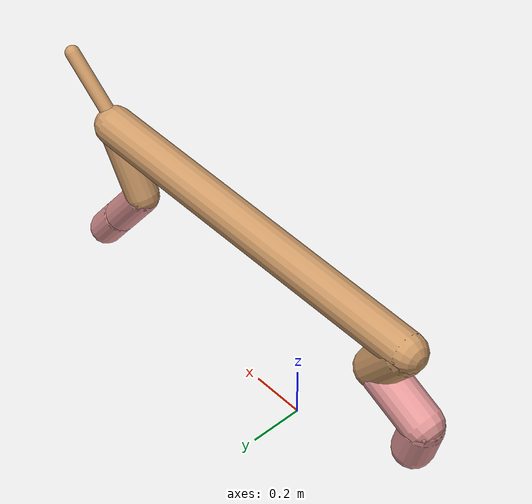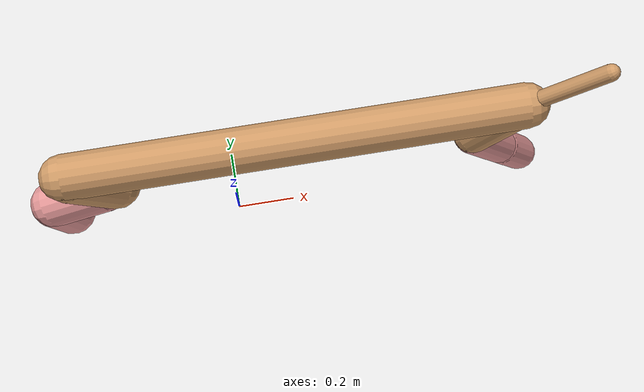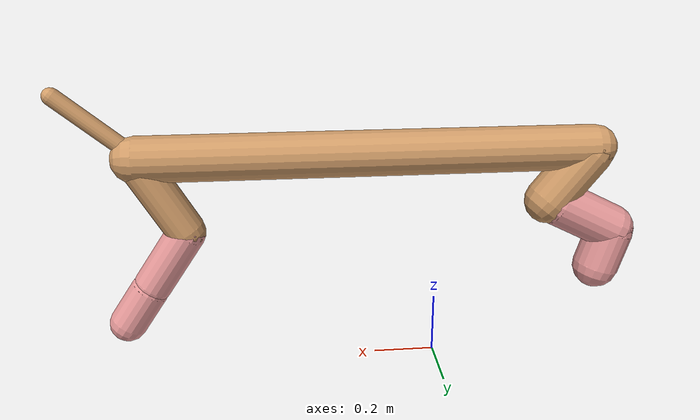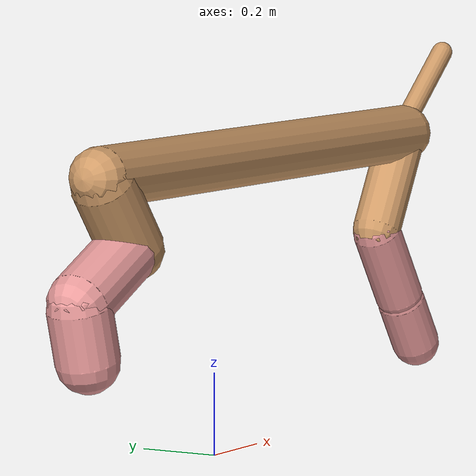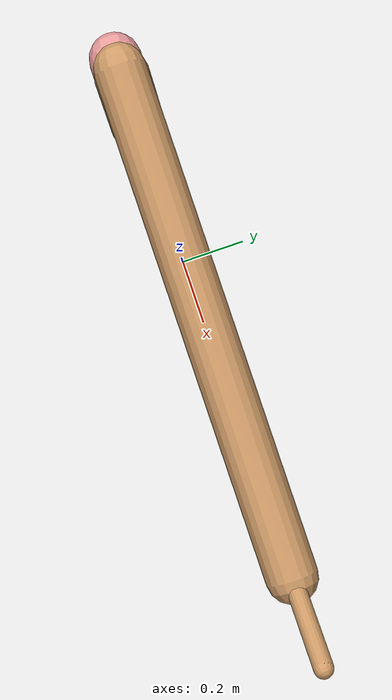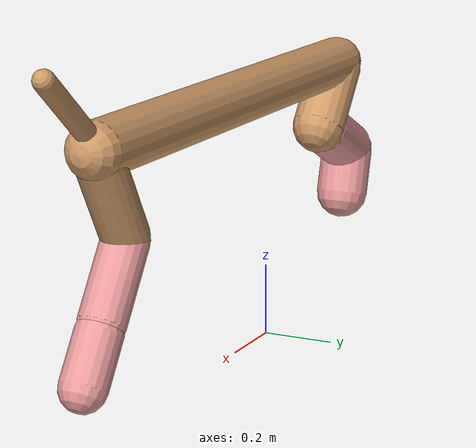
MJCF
<mujoco model="cheetah">
  <compiler angle="radian" coordinate="local" inertiafromgeom="true" settotalmass="14" />
  <default>
    <joint armature=".1" damping=".01" limited="true" solimplimit="0 .8 .03" solreflimit=".02 1" stiffness="8" />
    <geom conaffinity="0" condim="3" contype="1" friction="0.8 .1 .1" rgba="0.8 0.6 .4 1" solimp="0.0 0.8 0.01" solref="0.02 1" />
    <motor ctrllimited="true" ctrlrange="-1 1" />
  </default>
  <size nstack="300000" nuser_geom="1" />
  <option gravity="0 0 -9.81" timestep="0.01" />
  <worldbody>
    <body name="torso" pos="0.0 0.0 0.7081137698544157">
      <joint armature="0" axis="1 0 0" damping="0" limited="false" name="ignorex" pos="0 0 0" stiffness="0" type="slide" />
      <joint armature="0" axis="0 0 1" damping="0" limited="false" name="ignorez" pos="0 0 0" stiffness="0" type="slide" />
      <joint armature="0" axis="0 1 0" damping="0" limited="false" name="ignorey" pos="0 0 0" stiffness="0" type="hinge" />
      <geom fromto="-0.5 0.0 0.0 0.9384492344232078 0.0 0.0" name="torso" size="0.07212322984624613" type="capsule" />
      <geom axisangle="0 1 0 .87" name="head" pos="1.038449234423208 0.0 0.1" size="0.026891283782441572 0.15" type="capsule" />

      <body name="bthigh" pos="-.5 0 0">
        <joint axis="0 1 0" damping="6" name="bthigh" pos="0 0 0" range="-.52 1.05" stiffness="240" type="hinge" />
        <geom axisangle="0 1 0 -3.8" name="bthigh" pos="0.0734775819030384 0.0 -0.0955208564739499" size="0.07601870208774565 0.10149999999999999" type="capsule" />
        <body name="bshin" pos="0.10695516380607678 0.0 -0.18104171294789978">
          <joint axis="0 1 0" damping="4.5" name="bshin" pos="0 0 0" range="-.785 .785" stiffness="180" type="hinge" />
          <geom axisangle="0 1 0 -2.03" name="bshin" pos="-0.0997507764050038 0.0 -0.0498753882025019" rgba="0.9 0.6 0.6 1" size="0.07601870208774565 0.105" type="capsule" />
          <body name="bfoot" pos="-0.1995015528100076 0.0 -0.0997507764050038">
            <joint axis="0 1 0" damping="3" name="bfoot" pos="0 0 0" range="-.4 .785" stiffness="120" type="hinge" />
            <geom axisangle="0 1 0 -.27" name="bfoot" pos="0.021667753813597694 0.0 -0.07005907066396588" rgba="0.9 0.6 0.6 1" size="0.07601870208774565 0.0658" type="capsule" />
            <inertial mass="10" />
          </body>
        </body>
      </body>
      <body name="fthigh" pos="0.9384492344232078 0.0 0.0">
        <joint axis="0 1 0" damping="4.5" name="fthigh" pos="0 0 0" range="-1.5 0.8" stiffness="180" type="hinge" />
        <geom axisangle="0 1 0 .52" name="fthigh" pos="-0.07056876887079043 0.0 -0.12097503234992645" size="0.06100079263926612 0.13412879852577123" type="capsule" />
        <body name="fshin" pos="-0.14113753774158086 0.0 -0.2419500646998529">
          <joint axis="0 1 0" damping="3" name="fshin" pos="0 0 0" range="-1.2 1.1" stiffness="120" type="hinge" />
          <geom axisangle="0 1 0 -.6" name="fshin" pos="0.0655267330274244 0.0 -0.09072932265335684" rgba="0.9 0.6 0.6 1" size="0.06100079263926612 0.10689964393783269" type="capsule" />
          <body name="ffoot" pos="0.1310534660548488 0.0 -0.18145864530671368">
            <joint axis="0 1 0" damping="1.5" name="ffoot" pos="0 0 0" range="-3.1 -0.3" stiffness="60" type="hinge" />
            <geom axisangle="0 1 0 -.6" name="ffoot" pos="0.045321266511512776 0.0 -0.07049974790679767" rgba="0.9 0.6 0.6 1" size="0.06100079263926612 0.07059410448724801" type="capsule" />
            <inertial mass="10" />
          </body>
        </body>
      </body>
    </body>
  </worldbody>
  <actuator>
    <motor gear="120" joint="bthigh" name="bthigh" />
    <motor gear="90" joint="bshin" name="bshin" />
    <motor gear="60" joint="bfoot" name="bfoot" />
    <motor gear="120" joint="fthigh" name="fthigh" />
    <motor gear="60" joint="fshin" name="fshin" />
    <motor gear="30" joint="ffoot" name="ffoot" />
  </actuator>
</mujoco>
